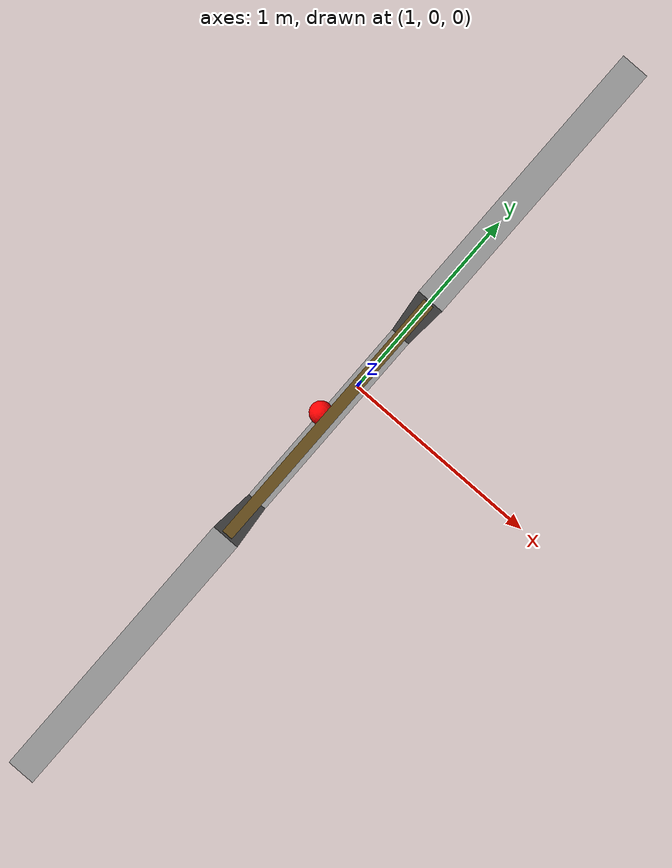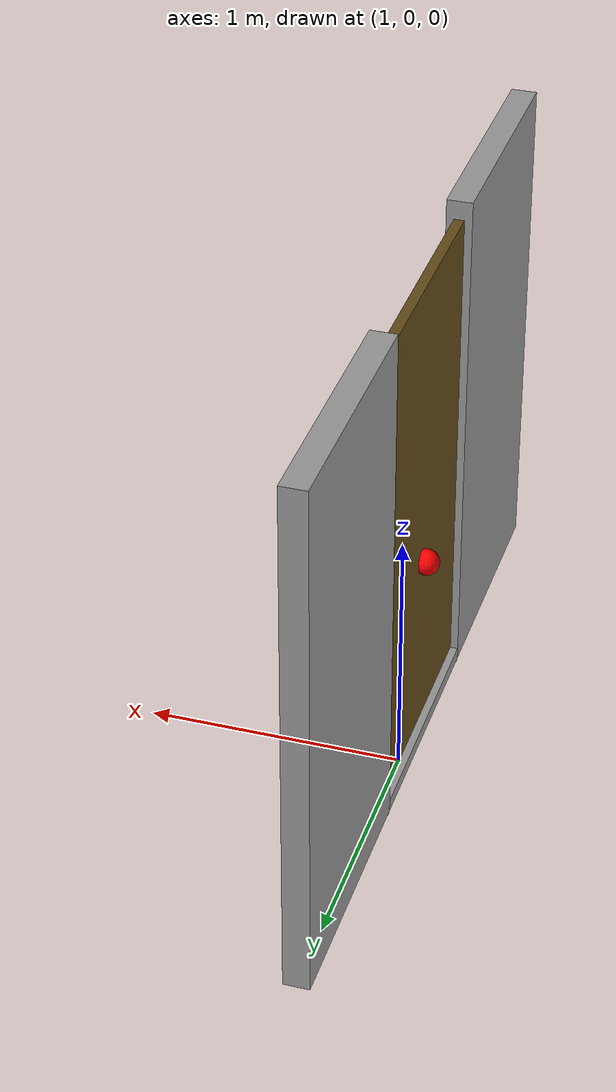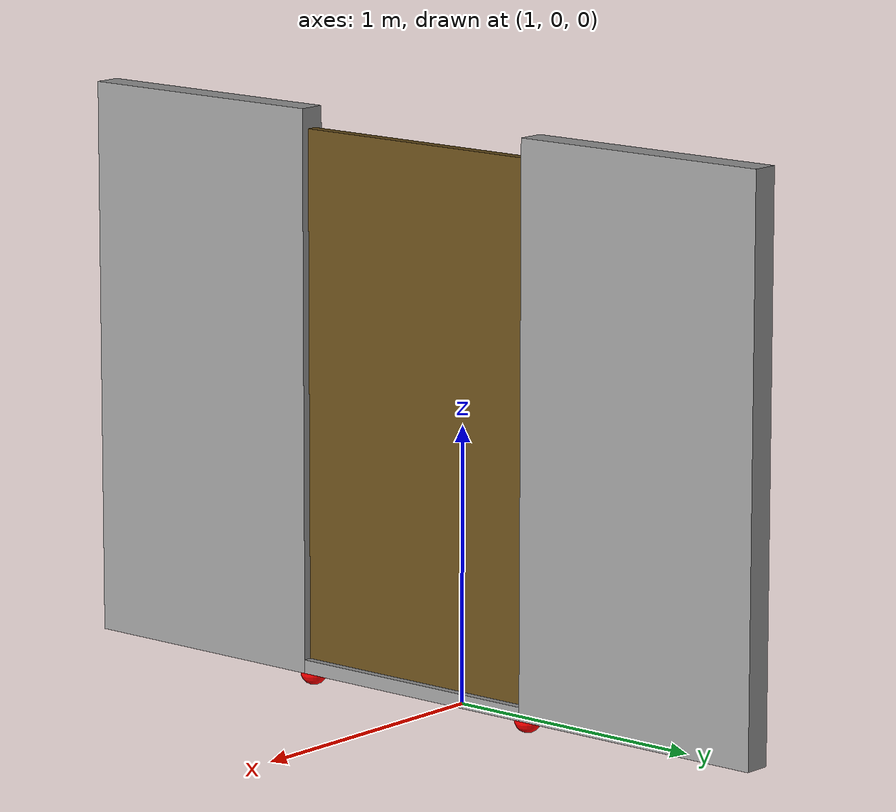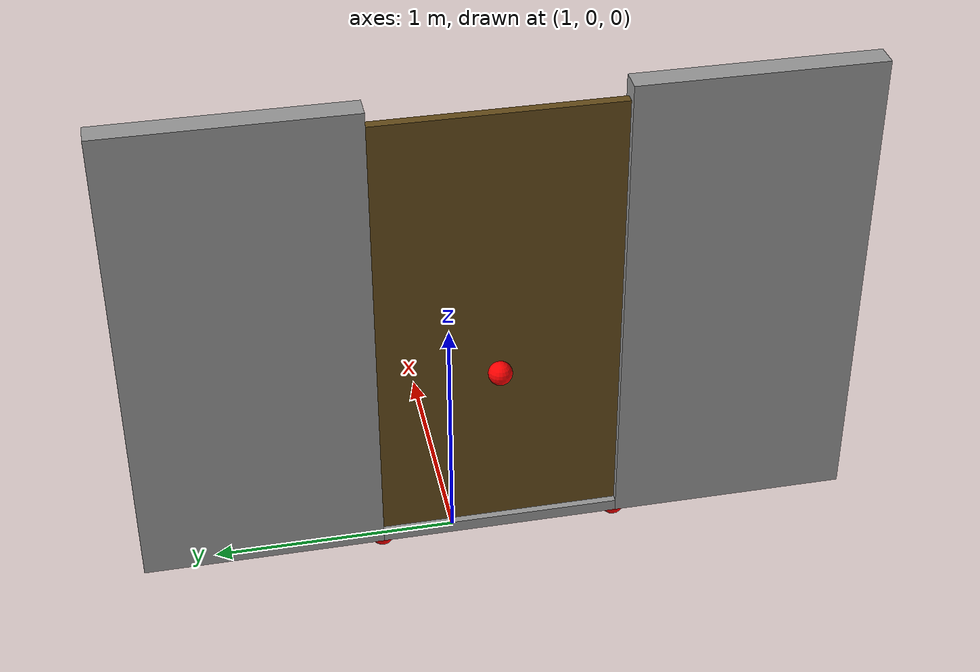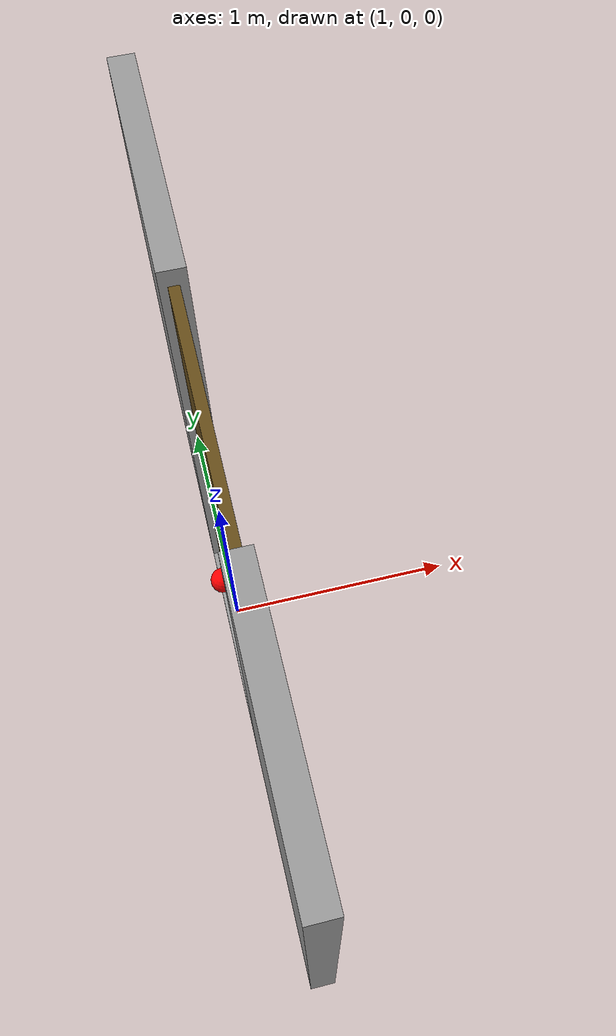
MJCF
<mujoco model="door_scene">
    <option gravity="0 0 -9.81" />
    <compiler angle="radian" />

    <worldbody>

        <body name="wall" pos="1.0 -0.2 0" quat="0 0 0 1">
            <geom name="wall_geom_right" type="box" size="0.05 0.5 1.025" pos="0 -1.0 1.025"
                rgba="0.6 0.6 0.6 1"
                contype="2" conaffinity="1" />
            <geom name="wall_geom_left" type="box" size="0.05 0.5 1.025" pos="0 1.0 1.025"
                rgba="0.6 0.6 0.6 1"
                contype="2" conaffinity="1" />
            <geom name="wall_geom_bottom" type="box" size="0.05 0.5 0.025" pos="0 0 0.025"
                rgba="0.6 0.6 0.6 1"
                contype="2" conaffinity="1" />
            <site name="wall_left_site" pos="0 -0.5 0" size="0.05" rgba="1 0 0 1" type="sphere" />
            <site name="wall_right_site" pos="0 0.5 0" size="0.05" rgba="1 0 0 1" type="sphere" />

            <body name="door" pos="0 0 0">
                <joint name="door_joint" type="hinge" pos="0 0.5 0" axis="0 0 1" range="-1.57 0"
                    stiffness="2" damping="1" springref="0" />
                <geom name="door_geom" type="box" size="0.02 0.5 0.975" pos="0 0 1"
                    rgba="0.4 0.3 0.1 1.0"
                    contype="2" conaffinity="1" mass="20" />

                <body name="handle" pos="0.04 -0.4 0.8">
                    <site name="handle_site" pos="0 0.4 0" size="0.05" rgba="1 0 0 1"
                        type="sphere" />
                </body>
            </body>
        </body>
    </worldbody>

    <actuator>
        <motor name="door_motor" joint="door_joint" ctrllimited="true" ctrlrange="-100 100" />
    </actuator>
</mujoco>
